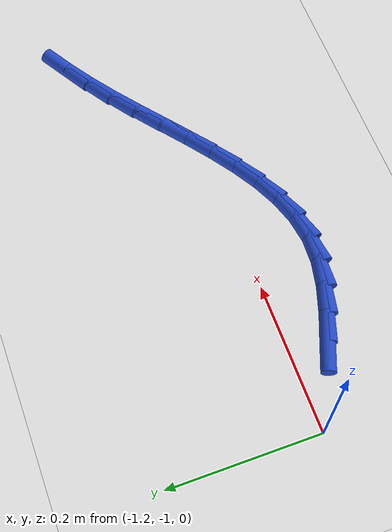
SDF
<sdf version="1.6">
 <world name="default">
  <model name="ground_plane">
   <static>1</static>
   <link name="link">
    <collision name="collision">
     <geometry><plane><normal>0 0 1</normal><size>100 100</size></plane></geometry>
     <surface><friction><ode><mu>100</mu><mu2>50</mu2></ode></friction></surface>
    </collision>
    <visual name="visual">
     <cast_shadows>0</cast_shadows>
     <geometry><plane><normal>0 0 1</normal><size>100 100</size></plane></geometry>
     <material>
      <script><uri>file://media/materials/scripts/gazebo.material</uri><name>Gazebo/WhiteGlow</name></script>
     </material>
    </visual>
   </link>
  </model>
  <model name="line">
   <link name="link_135">
    <pose>-1.0990393192463999 -1.0478234913814521 0.01 0 1.57 -0.377295745577832</pose>
    <collision name="collision">
     <geometry><cylinder><radius>0.01</radius><length>0.08</length></cylinder></geometry>
    </collision>
    <visual name="visual">
     <material>
      <script><name>Gazebo/Blue</name><uri>file://media/materials/scripts/gazebo.material</uri></script>
     </material>
     <geometry><cylinder><radius>0.01</radius><length>0.08</length></cylinder></geometry>
    </visual>
   </link>
   <link name="link_136">
    <pose>-1.0632668576345317 -1.0619994179049945 0.01 0 1.57 -0.3162096264546524</pose>
    <collision name="collision">
     <geometry><cylinder><radius>0.01</radius><length>0.08</length></cylinder></geometry>
    </collision>
    <visual name="visual">
     <material>
      <script><name>Gazebo/Blue</name><uri>file://media/materials/scripts/gazebo.material</uri></script>
     </material>
     <geometry><cylinder><radius>0.01</radius><length>0.08</length></cylinder></geometry>
    </visual>
   </link>
   <link name="link_137">
    <pose>-1.0279921839931725 -1.0735408690258328 0.01 0 1.57 -0.2080579214496339</pose>
    <collision name="collision">
     <geometry><cylinder><radius>0.01</radius><length>0.08</length></cylinder></geometry>
    </collision>
    <visual name="visual">
     <material>
      <script><name>Gazebo/Blue</name><uri>file://media/materials/scripts/gazebo.material</uri></script>
     </material>
     <geometry><cylinder><radius>0.01</radius><length>0.08</length></cylinder></geometry>
    </visual>
   </link>
   <link name="link_138">
    <pose>-0.9932916969893335 -1.0808665920818814 0.01 0 1.57 -0.04551375172173589</pose>
    <collision name="collision">
     <geometry><cylinder><radius>0.01</radius><length>0.08</length></cylinder></geometry>
    </collision>
    <visual name="visual">
     <material>
      <script><name>Gazebo/Blue</name><uri>file://media/materials/scripts/gazebo.material</uri></script>
     </material>
     <geometry><cylinder><radius>0.01</radius><length>0.08</length></cylinder></geometry>
    </visual>
   </link>
   <link name="link_139">
    <pose>-0.9592399799124022 -1.0824174845185917 0.01 0 1.57 0.14275664529640958</pose>
    <collision name="collision">
     <geometry><cylinder><radius>0.01</radius><length>0.08</length></cylinder></geometry>
    </collision>
    <visual name="visual">
     <material>
      <script><name>Gazebo/Blue</name><uri>file://media/materials/scripts/gazebo.material</uri></script>
     </material>
     <geometry><cylinder><radius>0.01</radius><length>0.08</length></cylinder></geometry>
    </visual>
   </link>
   <link name="link_140">
    <pose>-0.925831211038254 -1.0776154956990323 0.01 0 1.57 0.30589424414394284</pose>
    <collision name="collision">
     <geometry><cylinder><radius>0.01</radius><length>0.08</length></cylinder></geometry>
    </collision>
    <visual name="visual">
     <material>
      <script><name>Gazebo/Blue</name><uri>file://media/materials/scripts/gazebo.material</uri></script>
     </material>
     <geometry><cylinder><radius>0.01</radius><length>0.08</length></cylinder></geometry>
    </visual>
   </link>
   <link name="link_141">
    <pose>-0.8929490464200933 -1.0672310983401605 0.01 0 1.57 0.4351356317552182</pose>
    <collision name="collision">
     <geometry><cylinder><radius>0.01</radius><length>0.08</length></cylinder></geometry>
    </collision>
    <visual name="visual">
     <material>
      <script><name>Gazebo/Blue</name><uri>file://media/materials/scripts/gazebo.material</uri></script>
     </material>
     <geometry><cylinder><radius>0.01</radius><length>0.08</length></cylinder></geometry>
    </visual>
   </link>
   <link name="link_142">
    <pose>-0.8604691115291272 -1.0521327493208745 0.01 0 1.57 0.5317573805455655</pose>
    <collision name="collision">
     <geometry><cylinder><radius>0.01</radius><length>0.08</length></cylinder></geometry>
    </collision>
    <visual name="visual">
     <material>
      <script><name>Gazebo/Blue</name><uri>file://media/materials/scripts/gazebo.material</uri></script>
     </material>
     <geometry><cylinder><radius>0.01</radius><length>0.08</length></cylinder></geometry>
    </visual>
   </link>
   <link name="link_143">
    <pose>-0.8282670318365671 -1.033188905520076 0.01 0 1.57 0.599899149847238</pose>
    <collision name="collision">
     <geometry><cylinder><radius>0.01</radius><length>0.08</length></cylinder></geometry>
    </collision>
    <visual name="visual">
     <material>
      <script><name>Gazebo/Blue</name><uri>file://media/materials/scripts/gazebo.material</uri></script>
     </material>
     <geometry><cylinder><radius>0.01</radius><length>0.08</length></cylinder></geometry>
    </visual>
   </link>
   <link name="link_144">
    <pose>-0.7962184328136208 -1.0112680238166634 0.01 0 1.57 0.6437977233716821</pose>
    <collision name="collision">
     <geometry><cylinder><radius>0.01</radius><length>0.08</length></cylinder></geometry>
    </collision>
    <visual name="visual">
     <material>
      <script><name>Gazebo/Blue</name><uri>file://media/materials/scripts/gazebo.material</uri></script>
     </material>
     <geometry><cylinder><radius>0.01</radius><length>0.08</length></cylinder></geometry>
    </visual>
   </link>
   <link name="link_145">
    <pose>-0.7641989399314982 -0.9872385610895374 0.01 0 1.57 0.6666727307405582</pose>
    <collision name="collision">
     <geometry><cylinder><radius>0.01</radius><length>0.08</length></cylinder></geometry>
    </collision>
    <visual name="visual">
     <material>
      <script><name>Gazebo/Blue</name><uri>file://media/materials/scripts/gazebo.material</uri></script>
     </material>
     <geometry><cylinder><radius>0.01</radius><length>0.08</length></cylinder></geometry>
    </visual>
   </link>
   <link name="link_146">
    <pose>-0.7320841786614076 -0.961968974217597 0.01 0 1.57 0.6704594109295777</pose>
    <collision name="collision">
     <geometry><cylinder><radius>0.01</radius><length>0.08</length></cylinder></geometry>
    </collision>
    <visual name="visual">
     <material>
      <script><name>Gazebo/Blue</name><uri>file://media/materials/scripts/gazebo.material</uri></script>
     </material>
     <geometry><cylinder><radius>0.01</radius><length>0.08</length></cylinder></geometry>
    </visual>
   </link>
   <link name="link_147">
    <pose>-0.6997497744745584 -0.9363277200797425 0.01 0 1.57 0.65583436271303</pose>
    <collision name="collision">
     <geometry><cylinder><radius>0.01</radius><length>0.08</length></cylinder></geometry>
    </collision>
    <visual name="visual">
     <material>
      <script><name>Gazebo/Blue</name><uri>file://media/materials/scripts/gazebo.material</uri></script>
     </material>
     <geometry><cylinder><radius>0.01</radius><length>0.08</length></cylinder></geometry>
    </visual>
   </link>
   <link name="link_148">
    <pose>-0.6670713528421591 -0.9111832555548733 0.01 0 1.57 0.622366285984874</pose>
    <collision name="collision">
     <geometry><cylinder><radius>0.01</radius><length>0.08</length></cylinder></geometry>
    </collision>
    <visual name="visual">
     <material>
      <script><name>Gazebo/Blue</name><uri>file://media/materials/scripts/gazebo.material</uri></script>
     </material>
     <geometry><cylinder><radius>0.01</radius><length>0.08</length></cylinder></geometry>
    </visual>
   </link>
   <link name="link_149">
    <pose>-0.6339252208980473 -0.8874013248534365 0.01 0 1.57 0.5775540311929261</pose>
    <collision name="collision">
     <geometry><cylinder><radius>0.01</radius><length>0.08</length></cylinder></geometry>
    </collision>
    <visual name="visual">
     <material>
      <script><name>Gazebo/Blue</name><uri>file://media/materials/scripts/gazebo.material</uri></script>
     </material>
     <geometry><cylinder><radius>0.01</radius><length>0.08</length></cylinder></geometry>
    </visual>
   </link>
   <link name="link_150">
    <pose>-0.6002810448967442 -0.8654761506570181 0.01 0 1.57 0.5388872368747853</pose>
    <collision name="collision">
     <geometry><cylinder><radius>0.01</radius><length>0.08</length></cylinder></geometry>
    </collision>
    <visual name="visual">
     <material>
      <script><name>Gazebo/Blue</name><uri>file://media/materials/scripts/gazebo.material</uri></script>
     </material>
     <geometry><cylinder><radius>0.01</radius><length>0.08</length></cylinder></geometry>
    </visual>
   </link>
  </model>
 </world>
</sdf>
